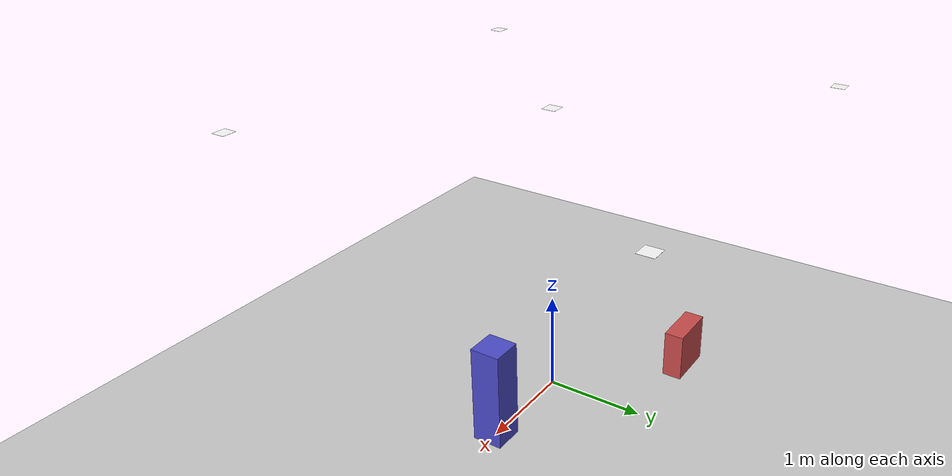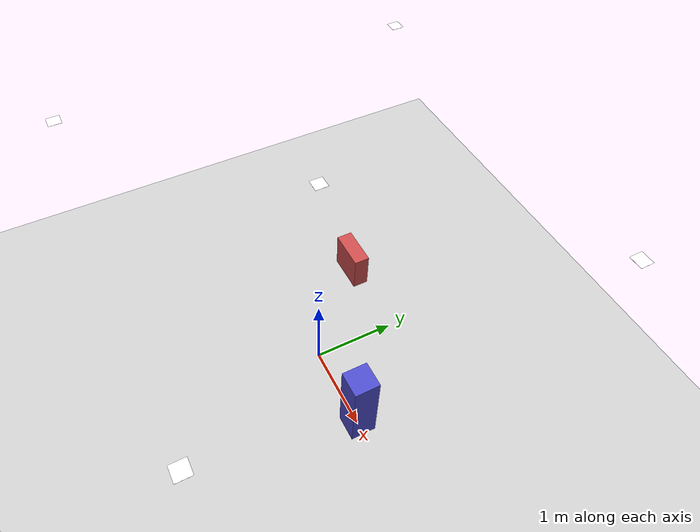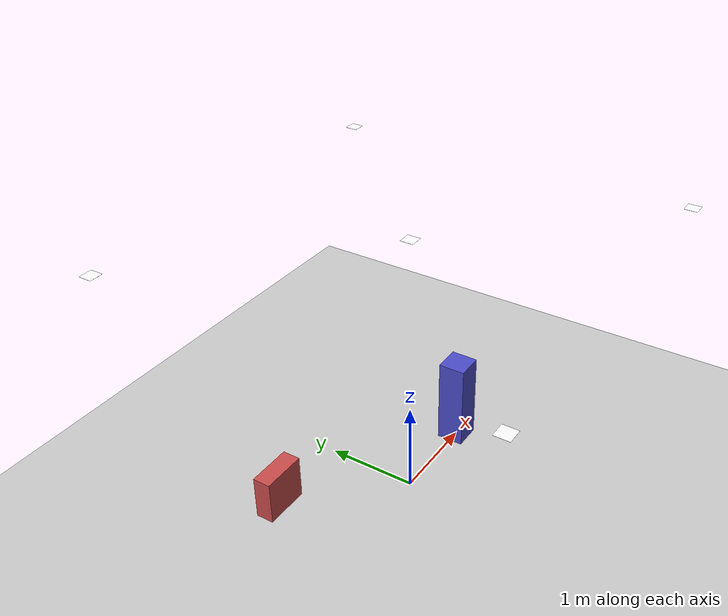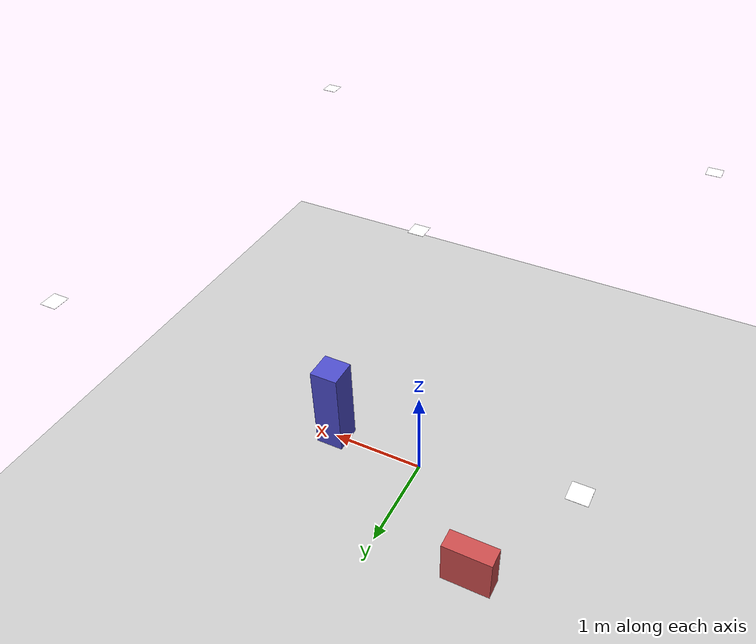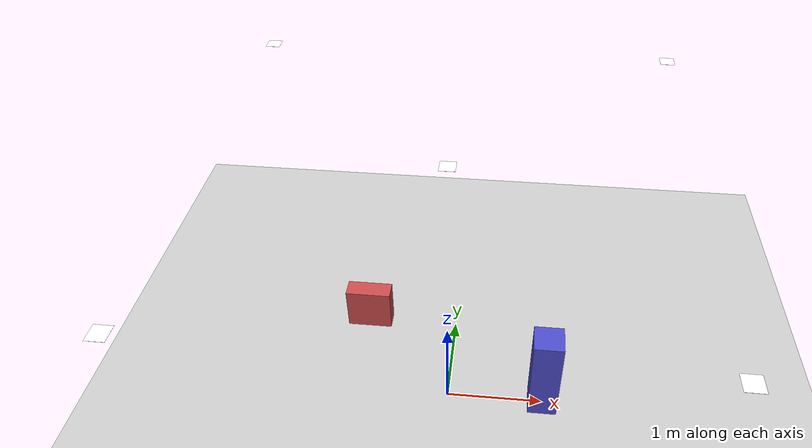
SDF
<?xml version="1.0" ?>
<sdf version="1.7">
  <world name="aruco_test_world">

    <!-- Physics -->
    <physics name="default_physics" default="0" type="ode">
      <gravity>0 0 -9.8066</gravity>
      <ode>
        <solver>
          <type>quick</type>
          <iters>10</iters>
          <sor>1.3</sor>
          <use_dynamic_moi_rescaling>0</use_dynamic_moi_rescaling>
        </solver>
        <constraints>
          <cfm>0</cfm>
          <erp>0.2</erp>
          <contact_max_correcting_vel>100</contact_max_correcting_vel>
          <contact_surface_layer>0.001</contact_surface_layer>
        </constraints>
      </ode>
      <max_step_size>0.004</max_step_size>
      <real_time_factor>1</real_time_factor>
      <real_time_update_rate>250</real_time_update_rate>
    </physics>

    <!-- Scene -->
    <scene>
      <ambient>0.6 0.6 0.6 1</ambient>
      <background>0.7 0.7 0.7 1</background>
      <shadows>true</shadows>
    </scene>

    <!-- Directional light pointing upward to illuminate ceiling-mounted ArUco markers -->
    <light name="aruco_illumination" type="directional">
      <pose>0 0 1.5 0 0 0</pose>
      <direction>0 0 1</direction>
      <diffuse>1.0 1.0 1.0 1</diffuse>
      <specular>0.3 0.3 0.3 1</specular>
      <intensity>1.2</intensity>
      <cast_shadows>false</cast_shadows>
    </light>

    <!-- Additional point lights for better coverage -->
    <light name="point_light_center" type="point">
      <pose>0 0 2 0 0 0</pose>
      <diffuse>0.8 0.8 0.8 1</diffuse>
      <specular>0.1 0.1 0.1 1</specular>
      <intensity>1.0</intensity>
      <range>10</range>
      <constant_attenuation>0.1</constant_attenuation>
      <linear_attenuation>0.01</linear_attenuation>
      <quadratic_attenuation>0.001</quadratic_attenuation>
      <cast_shadows>false</cast_shadows>
    </light>

    <light name="point_light_front" type="point">
      <pose>0 2.5 2 0 0 0</pose>
      <diffuse>0.7 0.7 0.7 1</diffuse>
      <specular>0.1 0.1 0.1 1</specular>
      <intensity>0.8</intensity>
      <range>8</range>
      <constant_attenuation>0.1</constant_attenuation>
      <linear_attenuation>0.01</linear_attenuation>
      <quadratic_attenuation>0.001</quadratic_attenuation>
      <cast_shadows>false</cast_shadows>
    </light>

    <light name="point_light_back" type="point">
      <pose>0 -2.5 2 0 0 0</pose>
      <diffuse>0.7 0.7 0.7 1</diffuse>
      <specular>0.1 0.1 0.1 1</specular>
      <intensity>0.8</intensity>
      <range>8</range>
      <constant_attenuation>0.1</constant_attenuation>
      <linear_attenuation>0.01</linear_attenuation>
      <quadratic_attenuation>0.001</quadratic_attenuation>
      <cast_shadows>false</cast_shadows>
    </light>

    <!-- Ground plane -->

    <model name='ground_plane'>
      <static>true</static>
      <link name='link'>
        <collision name='collision'>
          <geometry>
            <plane>
              <normal>0 0 1</normal>
              <size>100 100</size>
            </plane>
          </geometry>
          <surface>
            <friction>
              <ode/>
            </friction>
            <bounce/>
            <contact/>
          </surface>
        </collision>
        <visual name='visual'>
          <geometry>
            <plane>
              <normal>0 0 1</normal>
              <size>100 100</size>
            </plane>
          </geometry>
          <material>
            <ambient>0.8 0.8 0.8 1</ambient>
            <diffuse>0.8 0.8 0.8 1</diffuse>
            <specular>0.8 0.8 0.8 1</specular>
          </material>
        </visual>
        <pose>0 0 0 0 -0 0</pose>
        <inertial>
          <pose>0 0 0 0 -0 0</pose>
          <mass>1</mass>
          <inertia>
            <ixx>1</ixx>
            <ixy>0</ixy>
            <ixz>0</ixz>
            <iyy>1</iyy>
            <iyz>0</iyz>
            <izz>1</izz>
          </inertia>
        </inertial>
        <enable_wind>false</enable_wind>
      </link>
      <pose>0 0 0 0 -0 0</pose>
      <self_collide>false</self_collide>
    </model>

    <!-- ArUco marker 0 - Center of ceiling -->
    <include>
      <uri>model://aruco-0</uri>
      <pose>0 0 2.99 3.14159 0 0</pose>
      <name>aruco_marker_0</name>
    </include>

    <!-- ArUco marker 1 - Front left -->
    <include>
      <uri>model://aruco-1</uri>
      <pose>-2 2 2.99 3.14159 0 0</pose>
      <name>aruco_marker_1</name>
    </include>

    <!-- ArUco marker 2 - Front right -->
    <include>
      <uri>model://aruco-2</uri>
      <pose>2 2 2.99 3.14159 0 0</pose>
      <name>aruco_marker_2</name>
    </include>

    <!-- ArUco marker 3 - Back left -->
    <include>
      <uri>model://aruco-3</uri>
      <pose>-2 -2 2.99 3.14159 0 0</pose>
      <name>aruco_marker_3</name>
    </include>

    <!-- ArUco marker 4 - Back right -->
    <include>
      <uri>model://aruco-4</uri>
      <pose>2 -2 2.99 3.14159 0 0</pose>
      <name>aruco_marker_4</name>
    </include>

    <!-- Some obstacles for navigation -->
    <model name="obstacle_1">
      <pose>1 0 0.5 0 0 0</pose>
      <static>true</static>
      <link name="link">
        <collision name="collision">
          <geometry>
            <box>
              <size>0.3 0.3 1</size>
            </box>
          </geometry>
        </collision>
        <visual name="visual">
          <geometry>
            <box>
              <size>0.3 0.3 1</size>
            </box>
          </geometry>
          <material>
            <ambient>0.3 0.3 0.8 1</ambient>
            <diffuse>0.3 0.3 0.8 1</diffuse>
          </material>
        </visual>
      </link>
    </model>

    <model name="obstacle_2">
      <pose>-1 1 0.25 0 0 0</pose>
      <static>true</static>
      <link name="link">
        <collision name="collision">
          <geometry>
            <box>
              <size>0.5 0.2 0.5</size>
            </box>
          </geometry>
        </collision>
        <visual name="visual">
          <geometry>
            <box>
              <size>0.5 0.2 0.5</size>
            </box>
          </geometry>
          <material>
            <ambient>0.8 0.3 0.3 1</ambient>
            <diffuse>0.8 0.3 0.3 1</diffuse>
          </material>
        </visual>
      </link>
    </model>

    <light name='sun' type='directional'>
      <pose>0 0 1 0 -0 0</pose>
      <cast_shadows>false</cast_shadows>
      <intensity>1</intensity>
      <direction>-0.5 0.1 -0.9</direction>
      <diffuse>0.8 0.8 0.8 1</diffuse>
      <specular>0.2 0.2 0.2 1</specular>
      <attenuation>
        <range>1000</range>
        <linear>0.01</linear>
        <constant>0.90000000000000002</constant>
        <quadratic>0.001</quadratic>
      </attenuation>
      <spot>
        <inner_angle>0</inner_angle>
        <outer_angle>0</outer_angle>
        <falloff>0</falloff>
      </spot>
    </light>
  </world>
</sdf>

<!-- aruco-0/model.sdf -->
<sdf version="1.7">
  <model name="aruco-0">
    <pose>0 0 0 0 0 0</pose>
    <static>true</static>

    <link name="link">
      <pose>0 0 0 0 0 0</pose>

      <collision name="collision">
        <geometry>
          <box>
            <size>0.14 0.14 0.001</size>
          </box>
        </geometry>
      </collision>

      <visual name="visual">
        <geometry>
          <box>
            <size>0.14 0.14 0.001</size>
          </box>
        </geometry>
        <material>
          <ambient>1 1 1 1</ambient>
          <diffuse>1 1 1 1</diffuse>
          <specular>0.1 0.1 0.1 1</specular>
          <emissive>0 0 0 1</emissive>
          <pbr>
            <metal>
              <albedo_map>model://aruco-0/materials/textures/aruco_000.png</albedo_map>
            </metal>
          </pbr>
        </material>
      </visual>

      <inertial>
        <mass>0.001</mass>
        <inertia>
          <ixx>1e-6</ixx>
          <ixy>0</ixy>
          <ixz>0</ixz>
          <iyy>1e-6</iyy>
          <iyz>0</iyz>
          <izz>1e-6</izz>
        </inertia>
      </inertial>
    </link>
  </model>
</sdf>

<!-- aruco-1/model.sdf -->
<sdf version="1.7">
  <model name="aruco-1">
    <pose>0 0 0 0 0 0</pose>
    <static>true</static>

    <link name="link">
      <pose>0 0 0 0 0 0</pose>

      <collision name="collision">
        <geometry>
          <box>
            <size>0.14 0.14 0.001</size>
          </box>
        </geometry>
      </collision>

      <visual name="visual">
        <geometry>
          <box>
            <size>0.14 0.14 0.001</size>
          </box>
        </geometry>
        <material>
          <ambient>1 1 1 1</ambient>
          <diffuse>1 1 1 1</diffuse>
          <specular>0.1 0.1 0.1 1</specular>
          <emissive>0 0 0 1</emissive>
          <pbr>
            <metal>
              <albedo_map>model://aruco-1/materials/textures/aruco_001.png</albedo_map>
            </metal>
          </pbr>
        </material>
      </visual>

      <inertial>
        <mass>0.001</mass>
        <inertia>
          <ixx>1e-6</ixx>
          <ixy>0</ixy>
          <ixz>0</ixz>
          <iyy>1e-6</iyy>
          <iyz>0</iyz>
          <izz>1e-6</izz>
        </inertia>
      </inertial>
    </link>
  </model>
</sdf>

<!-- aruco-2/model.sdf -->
<sdf version="1.7">
  <model name="aruco-2">
    <pose>0 0 0 0 0 0</pose>
    <static>true</static>

    <link name="link">
      <pose>0 0 0 0 0 0</pose>

      <collision name="collision">
        <geometry>
          <box>
            <size>0.14 0.14 0.001</size>
          </box>
        </geometry>
      </collision>

      <visual name="visual">
        <geometry>
          <box>
            <size>0.14 0.14 0.001</size>
          </box>
        </geometry>
        <material>
          <ambient>1 1 1 1</ambient>
          <diffuse>1 1 1 1</diffuse>
          <specular>0.1 0.1 0.1 1</specular>
          <emissive>0 0 0 1</emissive>
          <pbr>
            <metal>
              <albedo_map>model://aruco-2/materials/textures/aruco_002.png</albedo_map>
            </metal>
          </pbr>
        </material>
      </visual>

      <inertial>
        <mass>0.001</mass>
        <inertia>
          <ixx>1e-6</ixx>
          <ixy>0</ixy>
          <ixz>0</ixz>
          <iyy>1e-6</iyy>
          <iyz>0</iyz>
          <izz>1e-6</izz>
        </inertia>
      </inertial>
    </link>
  </model>
</sdf>

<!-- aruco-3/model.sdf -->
<sdf version="1.7">
  <model name="aruco-3">
    <pose>0 0 0 0 0 0</pose>
    <static>true</static>

    <link name="link">
      <pose>0 0 0 0 0 0</pose>

      <collision name="collision">
        <geometry>
          <box>
            <size>0.14 0.14 0.001</size>
          </box>
        </geometry>
      </collision>

      <visual name="visual">
        <geometry>
          <box>
            <size>0.14 0.14 0.001</size>
          </box>
        </geometry>
        <material>
          <ambient>1 1 1 1</ambient>
          <diffuse>1 1 1 1</diffuse>
          <specular>0.1 0.1 0.1 1</specular>
          <emissive>0 0 0 1</emissive>
          <pbr>
            <metal>
              <albedo_map>model://aruco-3/materials/textures/aruco_003.png</albedo_map>
            </metal>
          </pbr>
        </material>
      </visual>

      <inertial>
        <mass>0.001</mass>
        <inertia>
          <ixx>1e-6</ixx>
          <ixy>0</ixy>
          <ixz>0</ixz>
          <iyy>1e-6</iyy>
          <iyz>0</iyz>
          <izz>1e-6</izz>
        </inertia>
      </inertial>
    </link>
  </model>
</sdf>

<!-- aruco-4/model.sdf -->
<sdf version="1.7">
  <model name="aruco-4">
    <pose>0 0 0 0 0 0</pose>
    <static>true</static>

    <link name="link">
      <pose>0 0 0 0 0 0</pose>

      <collision name="collision">
        <geometry>
          <box>
            <size>0.14 0.14 0.001</size>
          </box>
        </geometry>
      </collision>

      <visual name="visual">
        <geometry>
          <box>
            <size>0.14 0.14 0.001</size>
          </box>
        </geometry>
        <material>
          <ambient>1 1 1 1</ambient>
          <diffuse>1 1 1 1</diffuse>
          <specular>0.1 0.1 0.1 1</specular>
          <emissive>0 0 0 1</emissive>
          <pbr>
            <metal>
              <albedo_map>model://aruco-4/materials/textures/aruco_004.png</albedo_map>
            </metal>
          </pbr>
        </material>
      </visual>

      <inertial>
        <mass>0.001</mass>
        <inertia>
          <ixx>1e-6</ixx>
          <ixy>0</ixy>
          <ixz>0</ixz>
          <iyy>1e-6</iyy>
          <iyz>0</iyz>
          <izz>1e-6</izz>
        </inertia>
      </inertial>
    </link>
  </model>
</sdf>
